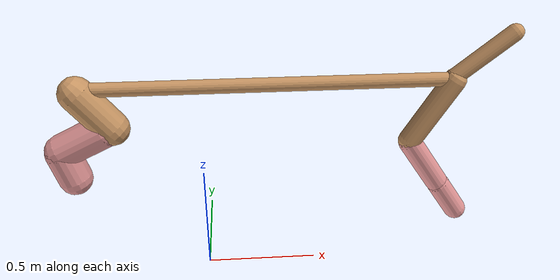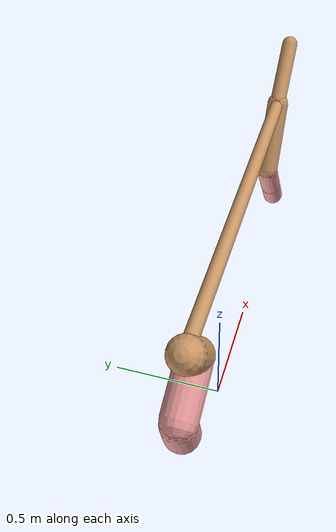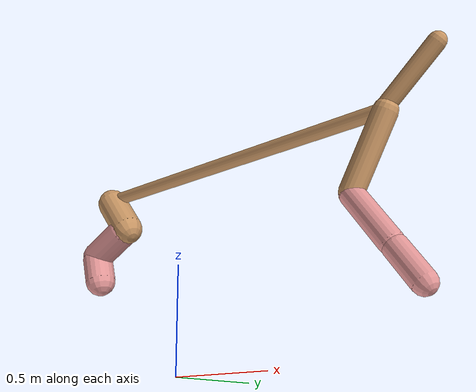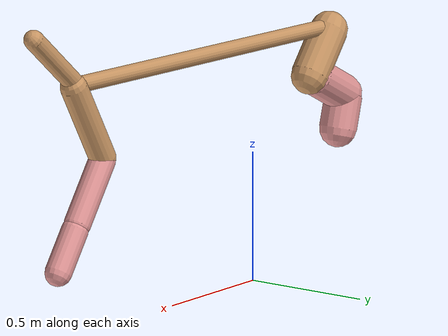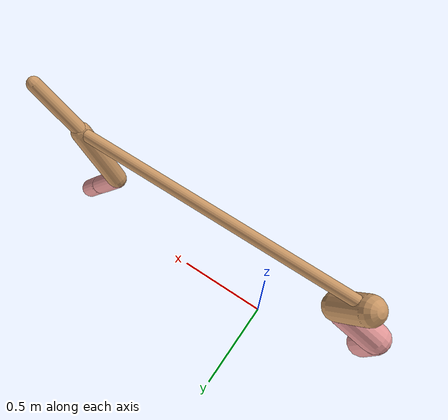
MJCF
<mujoco model="cheetah">
  <compiler angle="radian" coordinate="local" inertiafromgeom="true" settotalmass="14" />
  <default>
    <joint armature=".1" damping=".01" limited="true" solimplimit="0 .8 .03" solreflimit=".02 1" stiffness="8" />
    <geom conaffinity="0" condim="3" contype="1" friction="0.8 .1 .1" rgba="0.8 0.6 .4 1" solimp="0.0 0.8 0.01" solref="0.02 1" />
    <motor ctrllimited="true" ctrlrange="-1 1" />
  </default>
  <size nstack="300000" nuser_geom="1" />
  <option gravity="0 0 -9.81" timestep="0.01" />
  <worldbody>
    <body name="torso" pos="0.0 0.0 0.9167735469487461">
      <joint armature="0" axis="1 0 0" damping="0" limited="false" name="ignorex" pos="0 0 0" stiffness="0" type="slide" />
      <joint armature="0" axis="0 0 1" damping="0" limited="false" name="ignorez" pos="0 0 0" stiffness="0" type="slide" />
      <joint armature="0" axis="0 1 0" damping="0" limited="false" name="ignorey" pos="0 0 0" stiffness="0" type="hinge" />
      <geom fromto="-0.5 0.0 0.0 1.07164032952014 0.0 0.0" name="torso" size="0.030193478308096287" type="capsule" />
      <geom axisangle="0 1 0 .87" name="head" pos="1.17164032952014 0.0 0.1" size="0.036298623841117324 0.15" type="capsule" />

      <body name="bthigh" pos="-.5 0 0">
        <joint axis="0 1 0" damping="6" name="bthigh" pos="0 0 0" range="-.52 1.05" stiffness="240" type="hinge" />
        <geom axisangle="0 1 0 -3.8" name="bthigh" pos="0.0734775819030384 0.0 -0.0955208564739499" size="0.07376416411682056 0.10149999999999999" type="capsule" />
        <body name="bshin" pos="0.10695516380607678 0.0 -0.18104171294789978">
          <joint axis="0 1 0" damping="4.5" name="bshin" pos="0 0 0" range="-.785 .785" stiffness="180" type="hinge" />
          <geom axisangle="0 1 0 -2.03" name="bshin" pos="-0.0997507764050038 0.0 -0.0498753882025019" rgba="0.9 0.6 0.6 1" size="0.07376416411682056 0.105" type="capsule" />
          <body name="bfoot" pos="-0.1995015528100076 0.0 -0.0997507764050038">
            <joint axis="0 1 0" damping="3" name="bfoot" pos="0 0 0" range="-.4 .785" stiffness="120" type="hinge" />
            <geom axisangle="0 1 0 -.27" name="bfoot" pos="0.021667753813597694 0.0 -0.07005907066396588" rgba="0.9 0.6 0.6 1" size="0.07376416411682056 0.0658" type="capsule" />
            <inertial mass="10" />
          </body>
        </body>
      </body>
      <body name="fthigh" pos="1.07164032952014 0.0 0.0">
        <joint axis="0 1 0" damping="4.5" name="fthigh" pos="0 0 0" range="-1.5 0.8" stiffness="180" type="hinge" />
        <geom axisangle="0 1 0 .52" name="fthigh" pos="-0.08519565476067498 0.0 -0.14604969387544278" size="0.0497347217378387 0.1631578260922419" type="capsule" />
        <body name="fshin" pos="-0.17039130952134995 0.0 -0.29209938775088556">
          <joint axis="0 1 0" damping="3" name="fshin" pos="0 0 0" range="-1.2 1.1" stiffness="120" type="hinge" />
          <geom axisangle="0 1 0 -.6" name="fshin" pos="0.07907259371396831 0.0 -0.10948512975780228" rgba="0.9 0.6 0.6 1" size="0.0497347217378387 0.13003556064494465" type="capsule" />
          <body name="ffoot" pos="0.15814518742793662 0.0 -0.21897025951560456">
            <joint axis="0 1 0" damping="1.5" name="ffoot" pos="0 0 0" range="-3.1 -0.3" stiffness="60" type="hinge" />
            <geom axisangle="0 1 0 -.6" name="ffoot" pos="0.05358319652468005 0.0 -0.0833516390383912" rgba="0.9 0.6 0.6 1" size="0.0497347217378387 0.08587254004854837" type="capsule" />
            <inertial mass="10" />
          </body>
        </body>
      </body>
    </body>
  </worldbody>
  <actuator>
    <motor gear="120" joint="bthigh" name="bthigh" />
    <motor gear="90" joint="bshin" name="bshin" />
    <motor gear="60" joint="bfoot" name="bfoot" />
    <motor gear="120" joint="fthigh" name="fthigh" />
    <motor gear="60" joint="fshin" name="fshin" />
    <motor gear="30" joint="ffoot" name="ffoot" />
  </actuator>
</mujoco>
